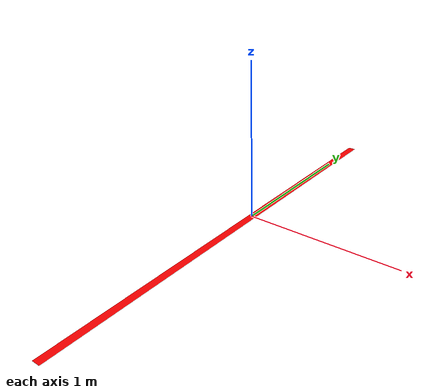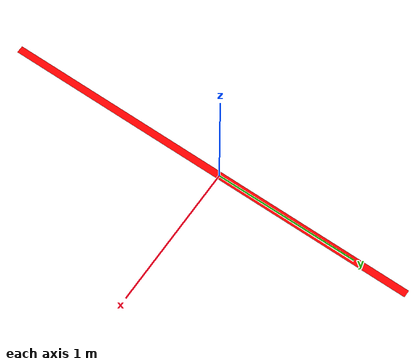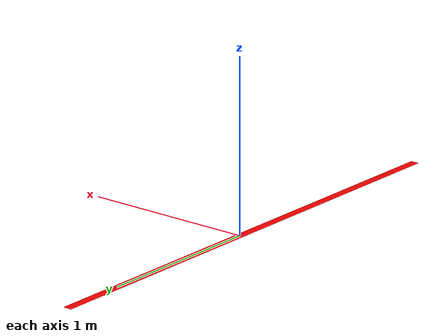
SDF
<?xml version='1.0'?>
<sdf version='1.7'>
  <model name='line_Red'>
    <pose>0 -0.09 0 0 -0 0</pose>
    <link name='Wall_0'>
      <collision name='Wall_0_Collision'>
        <geometry>
          <box>
            <size>2.95 0.05 0</size>
          </box>
        </geometry>
        <pose>0 0 0 0 -0 0</pose>
      </collision>
      <visual name='Wall_0_Visual'>
        <pose>0 0 0 0 -0 0</pose>
        <geometry>
          <box>
            <size>2.95 0.05 0</size>
          </box>
        </geometry>
        <material>
          <script>
            <uri>file://media/materials/scripts/gazebo.material</uri>
            <name>Gazebo/Grey</name>
          </script>
          <ambient>1 0 0 1</ambient>
        </material>
        <meta>
          <layer>0</layer>
        </meta>
      </visual>
      <pose>0 0 0 0 -0 1.5708</pose>
    </link>
    <static>1</static>
  </model>
</sdf>
